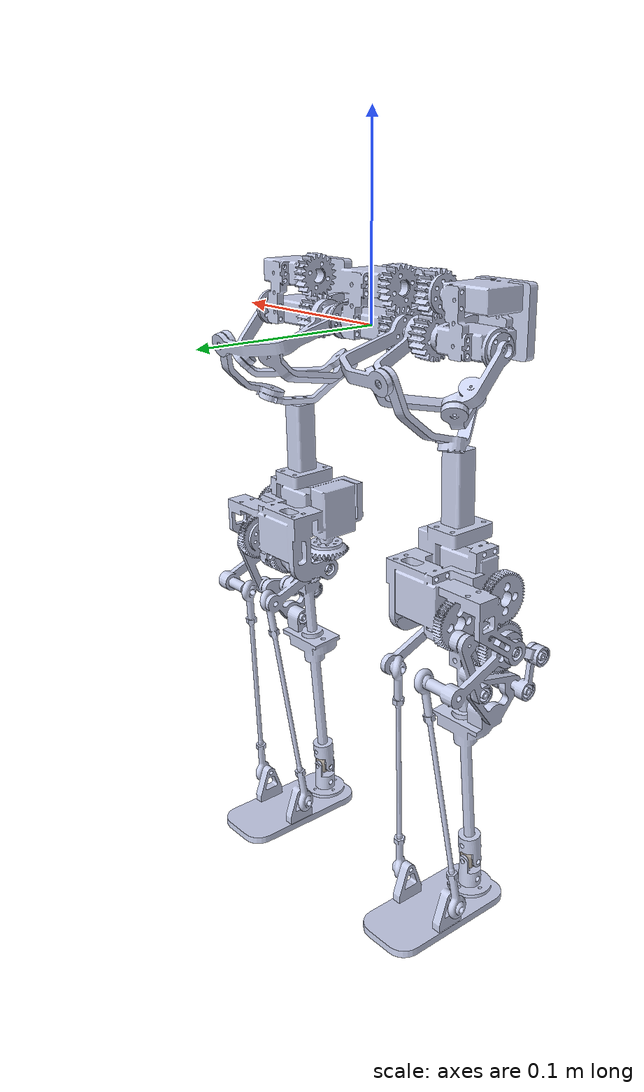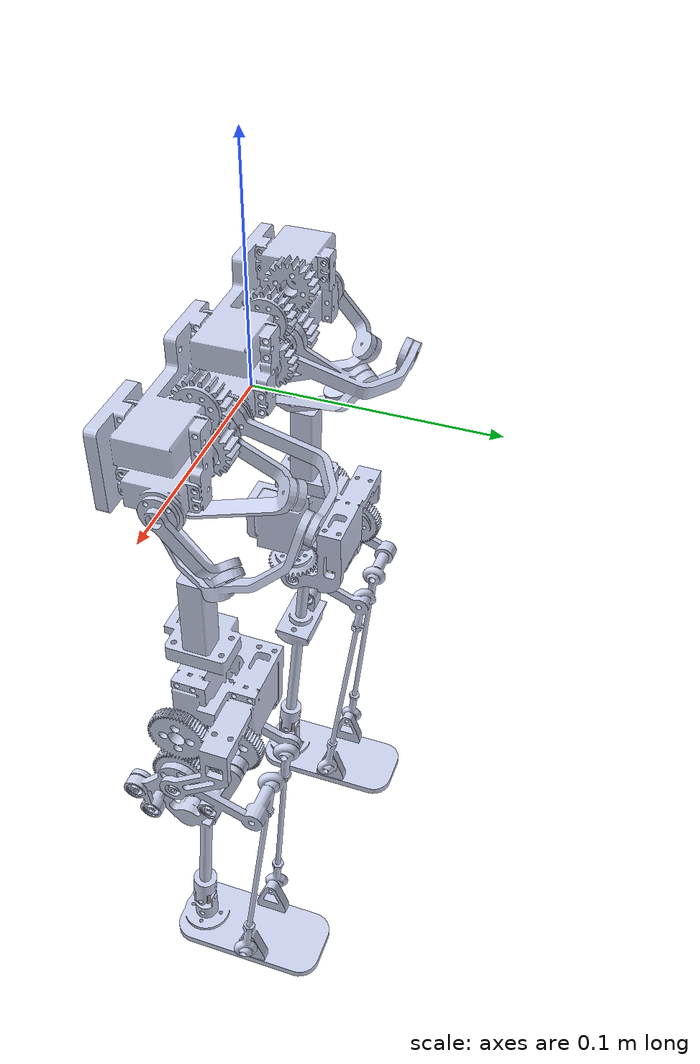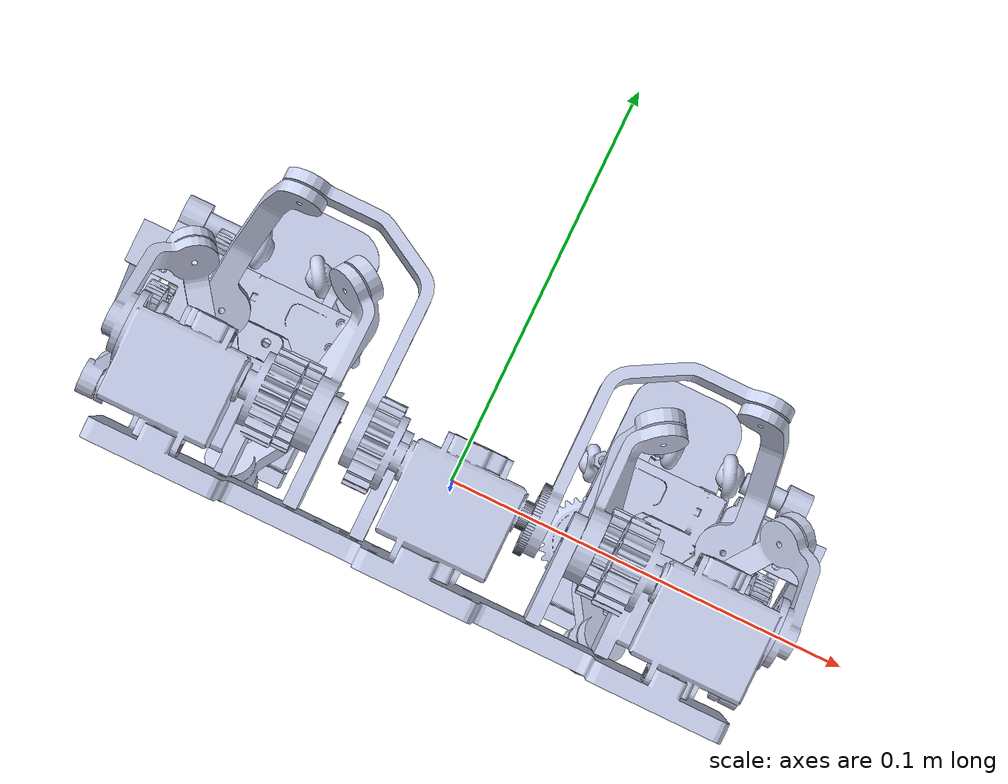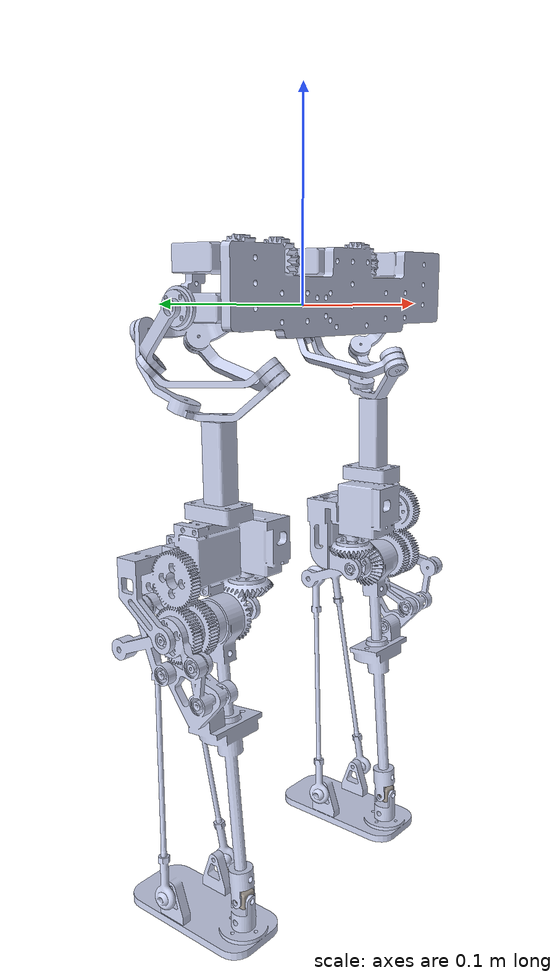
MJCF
<mujoco model="WholeAssembleV2">
  <compiler angle="radian"/>

  <asset>
    <mesh name="base_link" file="base_link.STL"/>
    <mesh name="RThighP" file="RThighP.STL"/>
    <mesh name="RThighY" file="RThighY.STL"/>
    <mesh name="RThighR" file="RThighR.STL"/>
    <mesh name="RShankP" file="RShankP.STL"/>
    <mesh name="RFootP" file="RFootP.STL"/>
    <mesh name="RFootR" file="RFootR.STL"/>
    <mesh name="LThighP" file="LThighP.STL"/>
    <mesh name="LThighY" file="LThighY.STL"/>
    <mesh name="LThighR" file="LThighR.STL"/>
    <mesh name="LShankP" file="LShankP.STL"/>
    <mesh name="LFootP" file="LFootP.STL"/>
    <mesh name="LFootR" file="LFootR.STL"/>
  </asset>

  <worldbody>
    <geom type="mesh" rgba="0.79 0.82 0.93 1" mesh="base_link"/>
    <body name="RThighP" pos="0.017714 0 0" quat="0.739176 0.673512 0 0">
      <inertial pos="0.0296 -0.0145 -0.0121" mass="0.5" diaginertia="0.001 0.001 0.001"/>
      <joint name="RHipP" pos="0 0 0" axis="-1 0 0" range="-1 1" actuatorfrcrange="-150 150"/>
      <geom type="mesh" rgba="0.79 0.82 0.93 1" mesh="RThighP"/>
      <body name="RThighY" pos="0.047436 0.01 -0.00611">
        <inertial pos="-0.0027 -0.0433 -0.0122" mass="0.5" diaginertia="0.001 0.001 0.001"/>
        <joint name="RHipY" pos="0 0 0" axis="0 -0.15469 -0.987963" range="-0.5 0.5" actuatorfrcrange="-150 150"/>
        <geom type="mesh" rgba="0.79 0.82 0.93 1" mesh="RThighY"/>
        <body name="RThighR" pos="-0.0052192 -0.059002 0.0025558" quat="0.999355 0.0359053 0 0">
          <inertial pos="-0.0001 -0.0633 -0.0045" mass="0.8" diaginertia="0.002 0.002 0.002"/>
          <joint name="RHipR" pos="0 0 0" axis="0 -1 0" range="-0.5 0.5" actuatorfrcrange="-150 150"/>
          <geom type="mesh" rgba="0.79 0.82 0.93 1" mesh="RThighR"/>
          <body name="RShankP" pos="0 -0.09088 0" quat="0.999466 -0.0326887 0 0">
            <inertial pos="0.0072 -0.0378 -0.0074" mass="0.6" diaginertia="0.002 0.002 0.002"/>
            <joint name="RKneeP" pos="0 0 0" axis="1 0 0" range="-2 0.2" actuatorfrcrange="-150 150"/>
            <geom type="mesh" rgba="0.79 0.82 0.93 1" mesh="RShankP"/>
            <body name="RFootP" pos="0 -0.14 0" quat="0.999066 0.0432011 0 0">
              <inertial pos="0 0 0" mass="0.4" diaginertia="0.001 0.001 0.001"/>
              <joint name="RAankleP" pos="0 0 0" axis="-1 0 0" range="-0.5 0.5" actuatorfrcrange="-50 50"/>
              <geom type="mesh" rgba="0.65 0.62 0.59 1" mesh="RFootP"/>
              <body name="RFootR">
                <inertial pos="0 -0.0174 -0.0244" mass="0.4" diaginertia="0.001 0.001 0.001"/>
                <joint name="RAnkleR" pos="0 0 0" axis="0 0 1" range="-0.3 0.3" actuatorfrcrange="-50 50"/>
                <geom type="mesh" rgba="0.79 0.82 0.93 1" mesh="RFootR"/>
              </body>
            </body>
          </body>
        </body>
      </body>
    </body>
    <body name="LThighP" pos="-0.022372 0 0" quat="0.713335 0.700822 0.000456284 -0.0012193">
      <inertial pos="-0.0268 -0.0161 -0.0116" mass="0.5" diaginertia="0.001 0.001 0.001"/>
      <joint name="LHipP" pos="0 0 0" axis="1 0 0" range="-1 1" actuatorfrcrange="-150 150"/>
      <geom type="mesh" rgba="0.79 0.82 0.93 1" mesh="LThighP"/>
      <body name="LThighY" pos="-0.032075 5.5879e-05 -6.6114e-05">
        <inertial pos="-0.0085 -0.0345 -0.0158" mass="0.5" diaginertia="0.001 0.001 0.001"/>
        <joint name="LHipY" pos="0 0 0" axis="0 -0.225191 -0.974315" range="-0.5 0.5" actuatorfrcrange="-150 150"/>
        <geom type="mesh" rgba="0.79 0.82 0.93 1" mesh="LThighY"/>
        <body name="LThighR" pos="-0.006 -0.04904 0">
          <inertial pos="-0.003 -0.0627 -0.0046" mass="0.8" diaginertia="0.002 0.002 0.002"/>
          <joint name="LHipR" pos="0 0 0" axis="0 -1 0" range="-0.5 0.5" actuatorfrcrange="-150 150"/>
          <geom type="mesh" rgba="0.79 0.82 0.93 1" mesh="LThighR"/>
          <body name="LShankP" pos="0 -0.09088 -1e-05" quat="0.999287 -0.0377545 0 0">
            <inertial pos="-0.011 -0.0393 -0.0077" mass="0.6" diaginertia="0.002 0.002 0.002"/>
            <joint name="LKneeP" pos="0 0 0" axis="1 0 0" range="-2 0.5" actuatorfrcrange="-150 150"/>
            <geom type="mesh" rgba="0.79 0.82 0.93 1" mesh="LShankP"/>
            <body name="LFootP" pos="0 -0.14 0" quat="0.998914 0.0465881 0 0">
              <inertial pos="-0.0035 0 0" mass="0.4" diaginertia="0.001 0.001 0.001"/>
              <joint name="LAnkleP" pos="0 0 0" axis="-1 0 0" range="-0.5 0.5" actuatorfrcrange="-50 50"/>
              <geom type="mesh" rgba="0.65 0.62 0.59 1" mesh="LFootP"/>
              <body name="LFootR" pos="-0.0035 0 0">
                <inertial pos="0 -0.0174 -0.0244" mass="0.4" diaginertia="0.001 0.001 0.001"/>
                <joint name="LAnkleR" pos="0 0 0" axis="0 0 1" range="-0.3 0.3" actuatorfrcrange="-50 50"/>
                <geom type="mesh" rgba="0.79 0.82 0.93 1" mesh="LFootR"/>
              </body>
            </body>
          </body>
        </body>
      </body>
    </body>
  </worldbody>
</mujoco>
